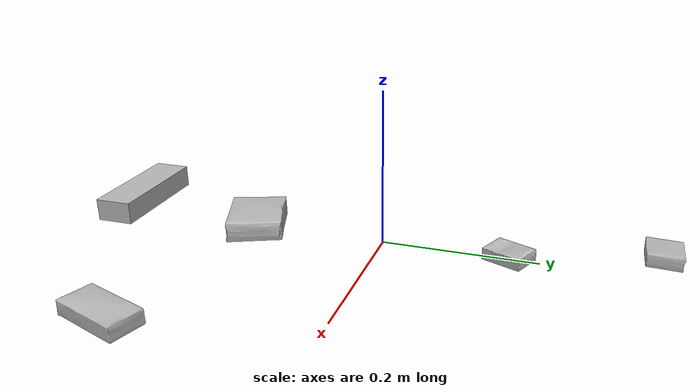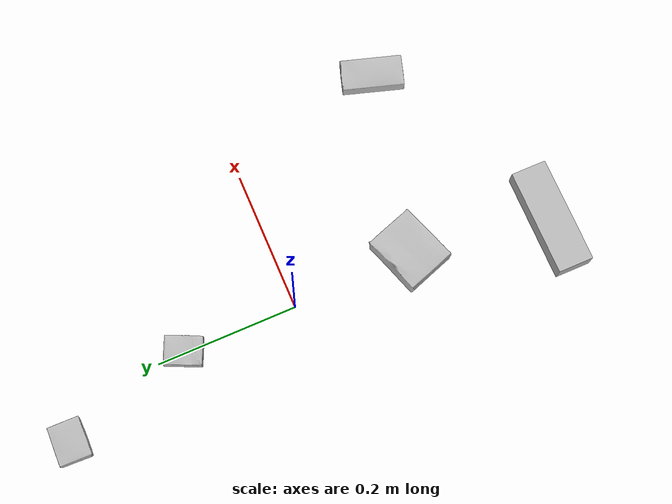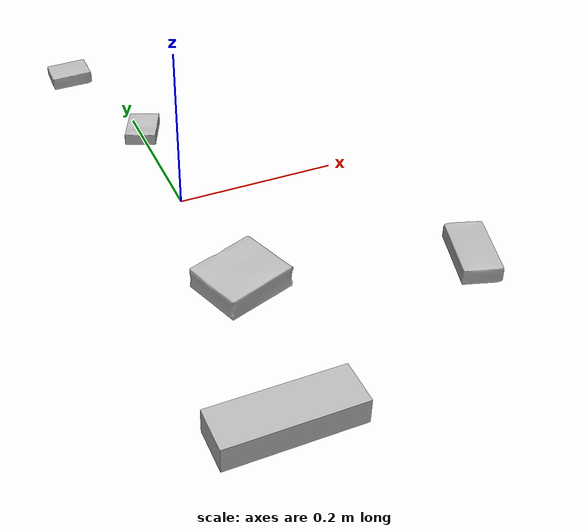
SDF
<sdf version="1.4">
  <world name="default">
    <light name="light1" type="point">
      <pose>0 0 1 0 0 0</pose>
      <diffuse>3 3 3 1</diffuse>
      <specular>3 3 3 1</specular>
    </light>
    <light name="light2" type="point">
      <pose>0 0.5 2 0 0 0</pose>
      <diffuse>1 1 1 1</diffuse>
      <specular>1 1 1 1</specular>
    </light>
    <light name="light3" type="point">
      <pose>0 0.5 2 0 0 0</pose>
      <diffuse>3 3 3 1</diffuse>
      <specular>3 3 3 1</specular>
    </light>
    <scene>
      <ambient>0.7 0.7 0.7</ambient>
    </scene>
    <model name="box1">
      <link name="link_box1">
        <collision name="default">
          <geometry>
            <mesh>
              <uri>model://sugar_box/collision_meshes/collision.obj</uri>
              <scale>0.5 0.5 0.5</scale>
            </mesh>
          </geometry>
          <surface>
            <friction>
              <ode>
                <mu>0.5</mu>
                <mu2>0.5</mu2>
              </ode>
            </friction>
          <contact>
        <ode>
            <max_vel>0</max_vel>
            <min_depth>0.0001</min_depth>
            <kp>1e8</kp>
        </ode>
    </contact></surface>
        </collision>
        <visual name="default">
          <geometry>
            <mesh>
              <uri>model://sugar_box/visual_meshes/visual.dae</uri>
              <scale>0.5 0.5 0.5</scale>
            </mesh>
          </geometry>
        </visual>
        <inertial>
          <mass>0.050072960555553436</mass>
          <pose>0.0005171863595023751 1.924554817378521e-05 -0.00018182402709499002 -0.0004046260967901466 0.0010506635218491861 0.0026153785561980193</pose>
          <inertia>
            <ixx>1.0430162e-05</ixx>
            <iyy>3.371243e-05</iyy>
            <izz>4.0357794e-05</izz>
            <ixy>0</ixy>
            <ixz>0</ixz>
            <iyz>0</iyz>
          </inertia>
        </inertial>
      </link>
      <pose>0.26540717482566833 -0.2294026017189026 0.011399302631616592 0.0007750758684396866 -0.0234331941702146 -1.8822958585739313</pose>
    </model>
    <model name="box2">
      <link name="link_box2">
        <collision name="default">
          <geometry>
            <mesh>
              <uri>model://pudding_box/collision_meshes/collision.obj</uri>
              <scale>0.5 0.5 0.5</scale>
            </mesh>
          </geometry>
          <surface>
            <friction>
              <ode>
                <mu>0.5</mu>
                <mu2>0.5</mu2>
              </ode>
            </friction>
          <contact>
        <ode>
            <max_vel>0</max_vel>
            <min_depth>0.0001</min_depth>
            <kp>1e8</kp>
        </ode>
    </contact></surface>
        </collision>
        <visual name="default">
          <geometry>
            <mesh>
              <uri>model://pudding_box/visual_meshes/visual.dae</uri>
              <scale>0.5 0.5 0.5</scale>
            </mesh>
          </geometry>
        </visual>
        <inertial>
          <mass>0.026034390553832054</mass>
          <pose>0.00024474109522998333 0.00040339428232982755 -0.0002594413817860186 0.005213101355963405 -0.006603798228586091 0.020079817710543634</pose>
          <inertia>
            <ixx>7.3576343e-06</ixx>
            <iyy>4.9502682e-06</iyy>
            <izz>1.086547e-05</izz>
            <ixy>0</ixy>
            <ixz>0</ixz>
            <iyz>0</iyz>
          </inertia>
        </inertial>
      </link>
      <pose>-0.05197366327047348 0.34385955333709717 0.00986290443688631 0.022348523740257413 -0.011391750390121363 -1.6000826006802127</pose>
    </model>
    <model name="box3">
      <link name="link_box3">
        <collision name="default">
          <geometry>
            <mesh>
              <uri>model://jenga/collision_meshes/collision.obj</uri>
              <scale>1.0 1.0 1.0</scale>
            </mesh>
          </geometry>
          <surface>
            <friction>
              <ode>
                <mu>0.5</mu>
                <mu2>0.5</mu2>
              </ode>
            </friction>
          <contact>
        <ode>
            <max_vel>0</max_vel>
            <min_depth>0.0001</min_depth>
            <kp>1e8</kp>
        </ode>
    </contact></surface>
        </collision>
        <visual name="default">
          <geometry>
            <mesh>
              <uri>model://jenga/visual_meshes/visual.dae</uri>
              <scale>1.0 1.0 1.0</scale>
            </mesh>
          </geometry>
        </visual>
        <inertial>
          <mass>0.2076648771762848</mass>
          <pose>-2.502856091268768e-07 -0.00010250010382151231 -4.0923405322246253e-05 0.0 -7.34215461761844e-07 0.0</pose>
          <inertia>
            <ixx>5.746591e-05</ixx>
            <iyy>0.00038938745</iyy>
            <izz>0.0004157042</izz>
            <ixy>0</ixy>
            <ixz>0</ixz>
            <iyz>0</iyz>
          </inertia>
        </inertial>
      </link>
      <pose>-0.026213740929961205 -0.3687340319156647 0.014999995008111 2.1685460796141265e-08 9.290996650647875e-10 -3.1415920987281645</pose>
    </model>
    <model name="box4">
      <link name="link_box4">
        <collision name="default">
          <geometry>
            <mesh>
              <uri>model://gelatin_box/collision_meshes/collision.obj</uri>
              <scale>1.0 1.0 1.0</scale>
            </mesh>
          </geometry>
          <surface>
            <friction>
              <ode>
                <mu>0.5</mu>
                <mu2>0.5</mu2>
              </ode>
            </friction>
          <contact>
        <ode>
            <max_vel>0</max_vel>
            <min_depth>0.0001</min_depth>
            <kp>1e8</kp>
        </ode>
    </contact></surface>
        </collision>
        <visual name="default">
          <geometry>
            <mesh>
              <uri>model://gelatin_box/visual_meshes/visual.dae</uri>
              <scale>1.0 1.0 1.0</scale>
            </mesh>
          </geometry>
        </visual>
        <inertial>
          <mass>0.09577830880880356</mass>
          <pose>0.000431961816502735 0.00011156871187267825 -0.0003640321083366871 -0.0010503719862657887 -0.004755821487046037 0.01644055388468454</pose>
          <inertia>
            <ixx>6.761167e-05</ixx>
            <iyy>4.8294667e-05</iyy>
            <izz>0.00010292002</izz>
            <ixy>0</ixy>
            <ixz>0</ixz>
            <iyz>0</iyz>
          </inertia>
        </inertial>
      </link>
      <pose>0.008986028842628002 -0.17282657325267792 0.01516831386834383 0.005596819778187701 -0.007303860522751944 1.8993534043359848</pose>
    </model>
    <model name="box5">
      <link name="link_box5">
        <collision name="default">
          <geometry>
            <mesh>
              <uri>model://cracker_box/collision_meshes/collision.obj</uri>
              <scale>0.25 0.25 0.25</scale>
            </mesh>
          </geometry>
          <surface>
            <friction>
              <ode>
                <mu>0.5</mu>
                <mu2>0.5</mu2>
              </ode>
            </friction>
          <contact>
        <ode>
            <max_vel>0</max_vel>
            <min_depth>0.0001</min_depth>
            <kp>1e8</kp>
        </ode>
    </contact></surface>
        </collision>
        <visual name="default">
          <geometry>
            <mesh>
              <uri>model://cracker_box/visual_meshes/visual.dae</uri>
              <scale>0.25 0.25 0.25</scale>
            </mesh>
          </geometry>
        </visual>
        <inertial>
          <mass>0.019404999911785126</mass>
          <pose>0.00023660343140363693 6.358561950037256e-05 -0.00042573839891701937 -0.00031620745436260704 -0.011106489600575076 0.0025467952338677235</pose>
          <inertia>
            <ixx>3.084854e-06</ixx>
            <iyy>5.093699e-06</iyy>
            <izz>7.269177e-06</izz>
            <ixy>0</ixy>
            <ixz>0</ixz>
            <iyz>0</iyz>
          </inertia>
        </inertial>
      </link>
      <pose>0.0022341436706483364 0.16214224696159363 0.009096025489270687 -0.01405025876729918 -0.0050168748863193904 1.1462232475609064</pose>
    </model>
  <physics type="ode">
      <max_contacts>50</max_contacts>
      <ode>
        <solver>
          <type>quick</type>
          <iters>75</iters>
        </solver>
        <constraints>
          <contact_max_correcting_vel>0</contact_max_correcting_vel>
          <contact_surface_layer>0</contact_surface_layer>
        </constraints>
      </ode>
    </physics></world>
</sdf>
